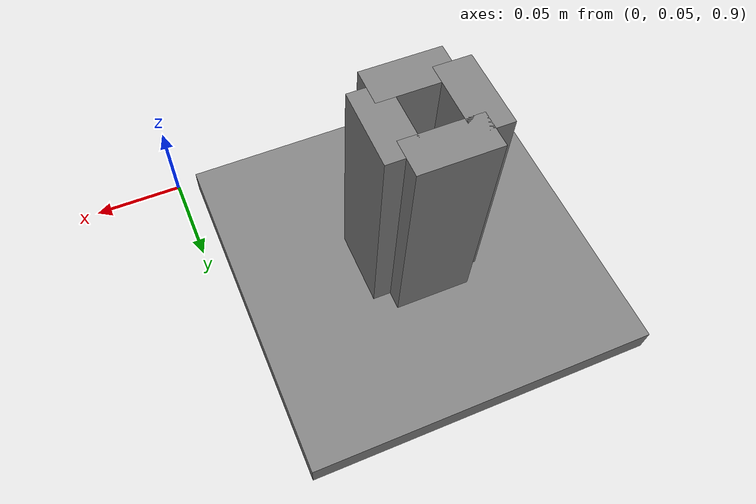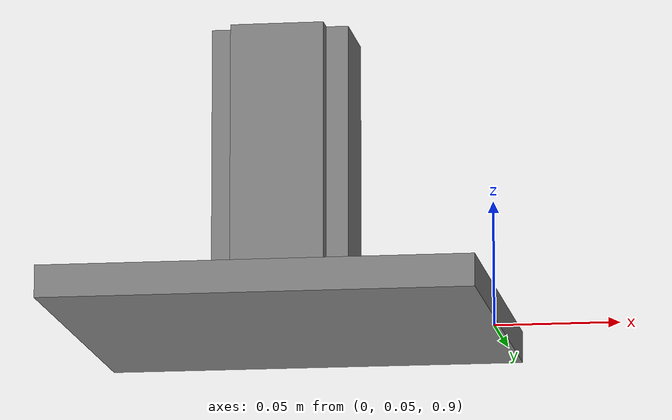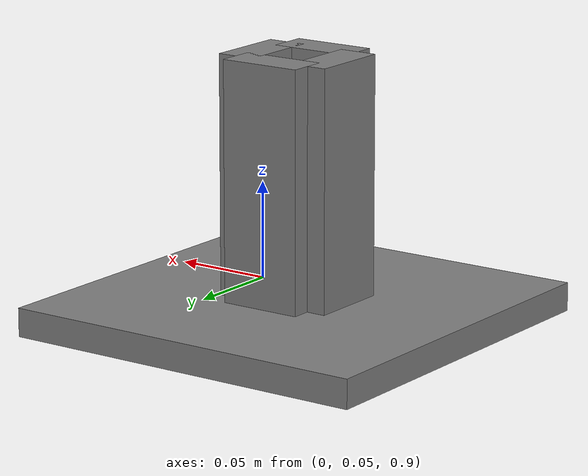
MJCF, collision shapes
<mujoco model="industreal_tray_insert_rectangular_peg_4mm">
  <!-- formal asset; XY scaled from official 8mm; Z layout preserved (site above base) -->
  <asset>
    <mesh name="industreal_tray_insert_rectangular_peg_4mm_mesh"
          file="./industreal/mesh/industreal_pegs/industreal_tray_insert_rectangular_peg_4mm.obj"
          scale="4.5 4.5 4.5" />
    <material name="industreal_tray_insert_rectangular_peg_4mm_mat"
              rgba="0.22 0.28 0.34 1"
              specular="0.85"
              shininess="0.75" />
  </asset>

  <worldbody>
    <body name="industreal_tray_insert_rectangular_peg_4mm" pos="-0.1 0.16 0.92">
      <freejoint name="industreal_tray_insert_rectangular_peg_4mm_joint" />

      <geom name="industreal_tray_insert_rectangular_peg_4mm_visual"
            type="mesh"
            mesh="industreal_tray_insert_rectangular_peg_4mm_mesh"
            material="industreal_tray_insert_rectangular_peg_4mm_mat"
            contype="0"
            conaffinity="0"
            density="0"
            group="1" />

      <geom name="industreal_tray_insert_rectangular_peg_4mm_base"
            type="box"
            pos="0 0 0.00675"
            size="0.090000 0.090000 0.00675"
            friction="0.8 0.02 0.002"
            solref="0.0015 1.0"
            solimp="0.995 0.999 0.0001"
            density="100"
            mass="0.01"
            group="3" />

      <geom name="industreal_tray_insert_rectangular_peg_4mm_wall_pos_y"
            type="box"
            pos="0 0.019651 0.06975"
            size="0.019651 0.009248 0.05625"
            friction="0.8 0.02 0.002"
            solref="0.0015 1.0"
            solimp="0.995 0.999 0.0001"
            density="100"
            mass="0.01"
            group="3" />
      <geom name="industreal_tray_insert_rectangular_peg_4mm_wall_neg_y"
            type="box"
            pos="0 -0.019651 0.06975"
            size="0.019651 0.009248 0.05625"
            friction="0.8 0.02 0.002"
            solref="0.0015 1.0"
            solimp="0.995 0.999 0.0001"
            density="100"
            mass="0.01"
            group="3" />
      <geom name="industreal_tray_insert_rectangular_peg_4mm_wall_pos_x"
            type="box"
            pos="0.019651 0 0.06975"
            size="0.009248 0.019651 0.05625"
            friction="0.8 0.02 0.002"
            solref="0.0015 1.0"
            solimp="0.995 0.999 0.0001"
            density="100"
            mass="0.01"
            group="3" />
      <geom name="industreal_tray_insert_rectangular_peg_4mm_wall_neg_x"
            type="box"
            pos="-0.019651 0 0.06975"
            size="0.009248 0.019651 0.05625"
            friction="0.8 0.02 0.002"
            solref="0.0015 1.0"
            solimp="0.995 0.999 0.0001"
            density="100"
            mass="0.01"
            group="3" />

      <geom name="industreal_tray_insert_rectangular_peg_4mm_bottom_contact"
            type="box"
            pos="0 0 0.0145"
            size="0.009248 0.009248 0.001"
            friction="0.8 0.02 0.002"
            solref="0.0015 1.0"
            solimp="0.995 0.999 0.0001"
            density="100"
            mass="0.01"
            rgba="1 0 0 1"
            group="3" />

      <site name="industreal_tray_insert_rectangular_peg_4mm_socket_site"
            pos="0 0 0.027"
            size="0.006 0.006 0.006"
            rgba="0 0 1 0" />
    </body>
  </worldbody>
</mujoco>
